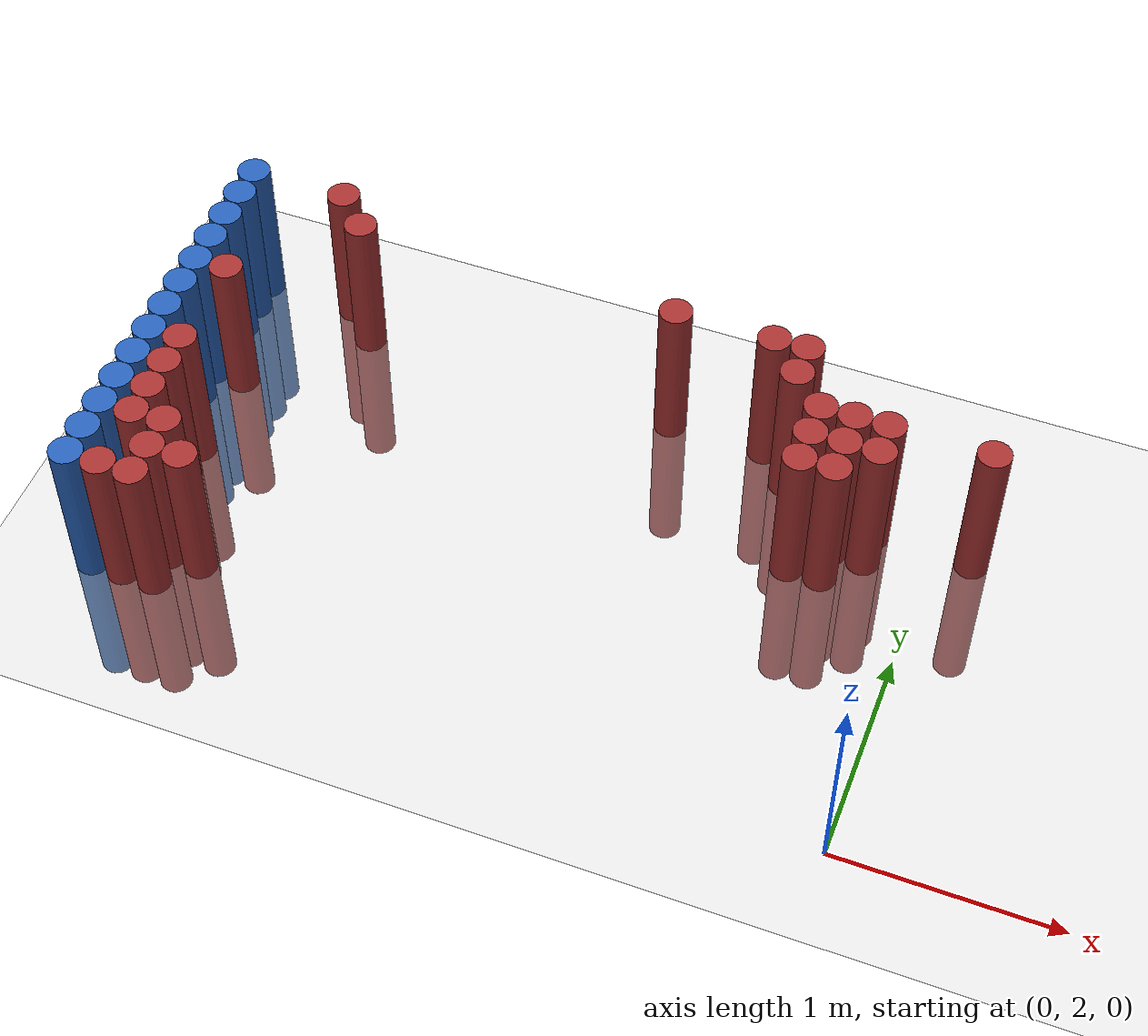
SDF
<sdf version="1.6">
 <world name="default">
  <model name="ground_plane">
   <static>1</static>
   <link name="link">
    <collision name="collision">
     <geometry><plane><normal>0 0 1</normal><size>100 100</size></plane></geometry>
     <surface><friction><ode><mu>100</mu><mu2>50</mu2></ode></friction></surface>
    </collision>
    <visual name="visual">
     <cast_shadows>0</cast_shadows>
     <geometry><plane><normal>0 0 1</normal><size>100 100</size></plane></geometry>
     <material>
      <script><uri>file://media/materials/scripts/gazebo.material</uri><name>Gazebo/Grey</name></script>
     </material>
    </visual>
   </link>
  </model>
  <model name="unit_cylinder_145">
   <static>1</static>
   <pose>-3.425000 2.275000 0.000000 0.000000 0.000000 0.000000</pose>
   <link name="link">
    <inertial>
     <mass>1</mass>
     <inertia><ixx>0.145833</ixx><ixy>0</ixy><ixz>0</ixz><iyy>0.145833</iyy><iyz>0</iyz><izz>0.125</izz></inertia>
    </inertial>
    <collision name="collision">
     <geometry><cylinder><radius>0.075000</radius><length>1.5</length></cylinder></geometry>
    </collision>
    <visual name="visual">
     <geometry><cylinder><radius>0.075000</radius><length>1.5</length></cylinder></geometry>
     <material>
      <ambient>0.152000 0.379000 0.720000 1</ambient>
      <diffuse>0.152000 0.379000 0.720000 1</diffuse>
     </material>
     <material>
      <script><name>Gazebo/Grey</name><uri>file://media/materials/scripts/gazebo.material</uri></script>
     </material>
    </visual>
   </link>
  </model>
  <model name="unit_cylinder_147">
   <static>1</static>
   <pose>-3.425000 2.425000 0.000000 0.000000 0.000000 0.000000</pose>
   <link name="link">
    <inertial>
     <mass>1</mass>
     <inertia><ixx>0.145833</ixx><ixy>0</ixy><ixz>0</ixz><iyy>0.145833</iyy><iyz>0</iyz><izz>0.125</izz></inertia>
    </inertial>
    <collision name="collision">
     <geometry><cylinder><radius>0.075000</radius><length>1.5</length></cylinder></geometry>
    </collision>
    <visual name="visual">
     <geometry><cylinder><radius>0.075000</radius><length>1.5</length></cylinder></geometry>
     <material>
      <ambient>0.152000 0.379000 0.720000 1</ambient>
      <diffuse>0.152000 0.379000 0.720000 1</diffuse>
     </material>
     <material>
      <script><name>Gazebo/Grey</name><uri>file://media/materials/scripts/gazebo.material</uri></script>
     </material>
    </visual>
   </link>
  </model>
  <model name="unit_cylinder_149">
   <static>1</static>
   <pose>-3.425000 2.575000 0.000000 0.000000 0.000000 0.000000</pose>
   <link name="link">
    <inertial>
     <mass>1</mass>
     <inertia><ixx>0.145833</ixx><ixy>0</ixy><ixz>0</ixz><iyy>0.145833</iyy><iyz>0</iyz><izz>0.125</izz></inertia>
    </inertial>
    <collision name="collision">
     <geometry><cylinder><radius>0.075000</radius><length>1.5</length></cylinder></geometry>
    </collision>
    <visual name="visual">
     <geometry><cylinder><radius>0.075000</radius><length>1.5</length></cylinder></geometry>
     <material>
      <ambient>0.152000 0.379000 0.720000 1</ambient>
      <diffuse>0.152000 0.379000 0.720000 1</diffuse>
     </material>
     <material>
      <script><name>Gazebo/Grey</name><uri>file://media/materials/scripts/gazebo.material</uri></script>
     </material>
    </visual>
   </link>
  </model>
  <model name="unit_cylinder_151">
   <static>1</static>
   <pose>-3.425000 2.725000 0.000000 0.000000 0.000000 0.000000</pose>
   <link name="link">
    <inertial>
     <mass>1</mass>
     <inertia><ixx>0.145833</ixx><ixy>0</ixy><ixz>0</ixz><iyy>0.145833</iyy><iyz>0</iyz><izz>0.125</izz></inertia>
    </inertial>
    <collision name="collision">
     <geometry><cylinder><radius>0.075000</radius><length>1.5</length></cylinder></geometry>
    </collision>
    <visual name="visual">
     <geometry><cylinder><radius>0.075000</radius><length>1.5</length></cylinder></geometry>
     <material>
      <ambient>0.152000 0.379000 0.720000 1</ambient>
      <diffuse>0.152000 0.379000 0.720000 1</diffuse>
     </material>
     <material>
      <script><name>Gazebo/Grey</name><uri>file://media/materials/scripts/gazebo.material</uri></script>
     </material>
    </visual>
   </link>
  </model>
  <model name="unit_cylinder_153">
   <static>1</static>
   <pose>-3.425000 2.875000 0.000000 0.000000 0.000000 0.000000</pose>
   <link name="link">
    <inertial>
     <mass>1</mass>
     <inertia><ixx>0.145833</ixx><ixy>0</ixy><ixz>0</ixz><iyy>0.145833</iyy><iyz>0</iyz><izz>0.125</izz></inertia>
    </inertial>
    <collision name="collision">
     <geometry><cylinder><radius>0.075000</radius><length>1.5</length></cylinder></geometry>
    </collision>
    <visual name="visual">
     <geometry><cylinder><radius>0.075000</radius><length>1.5</length></cylinder></geometry>
     <material>
      <ambient>0.152000 0.379000 0.720000 1</ambient>
      <diffuse>0.152000 0.379000 0.720000 1</diffuse>
     </material>
     <material>
      <script><name>Gazebo/Grey</name><uri>file://media/materials/scripts/gazebo.material</uri></script>
     </material>
    </visual>
   </link>
  </model>
  <model name="unit_cylinder_155">
   <static>1</static>
   <pose>-3.425000 3.025000 0.000000 0.000000 0.000000 0.000000</pose>
   <link name="link">
    <inertial>
     <mass>1</mass>
     <inertia><ixx>0.145833</ixx><ixy>0</ixy><ixz>0</ixz><iyy>0.145833</iyy><iyz>0</iyz><izz>0.125</izz></inertia>
    </inertial>
    <collision name="collision">
     <geometry><cylinder><radius>0.075000</radius><length>1.5</length></cylinder></geometry>
    </collision>
    <visual name="visual">
     <geometry><cylinder><radius>0.075000</radius><length>1.5</length></cylinder></geometry>
     <material>
      <ambient>0.152000 0.379000 0.720000 1</ambient>
      <diffuse>0.152000 0.379000 0.720000 1</diffuse>
     </material>
     <material>
      <script><name>Gazebo/Grey</name><uri>file://media/materials/scripts/gazebo.material</uri></script>
     </material>
    </visual>
   </link>
  </model>
  <model name="unit_cylinder_157">
   <static>1</static>
   <pose>-3.425000 3.175000 0.000000 0.000000 0.000000 0.000000</pose>
   <link name="link">
    <inertial>
     <mass>1</mass>
     <inertia><ixx>0.145833</ixx><ixy>0</ixy><ixz>0</ixz><iyy>0.145833</iyy><iyz>0</iyz><izz>0.125</izz></inertia>
    </inertial>
    <collision name="collision">
     <geometry><cylinder><radius>0.075000</radius><length>1.5</length></cylinder></geometry>
    </collision>
    <visual name="visual">
     <geometry><cylinder><radius>0.075000</radius><length>1.5</length></cylinder></geometry>
     <material>
      <ambient>0.152000 0.379000 0.720000 1</ambient>
      <diffuse>0.152000 0.379000 0.720000 1</diffuse>
     </material>
     <material>
      <script><name>Gazebo/Grey</name><uri>file://media/materials/scripts/gazebo.material</uri></script>
     </material>
    </visual>
   </link>
  </model>
  <model name="unit_cylinder_159">
   <static>1</static>
   <pose>-3.425000 3.325000 0.000000 0.000000 0.000000 0.000000</pose>
   <link name="link">
    <inertial>
     <mass>1</mass>
     <inertia><ixx>0.145833</ixx><ixy>0</ixy><ixz>0</ixz><iyy>0.145833</iyy><iyz>0</iyz><izz>0.125</izz></inertia>
    </inertial>
    <collision name="collision">
     <geometry><cylinder><radius>0.075000</radius><length>1.5</length></cylinder></geometry>
    </collision>
    <visual name="visual">
     <geometry><cylinder><radius>0.075000</radius><length>1.5</length></cylinder></geometry>
     <material>
      <ambient>0.152000 0.379000 0.720000 1</ambient>
      <diffuse>0.152000 0.379000 0.720000 1</diffuse>
     </material>
     <material>
      <script><name>Gazebo/Grey</name><uri>file://media/materials/scripts/gazebo.material</uri></script>
     </material>
    </visual>
   </link>
  </model>
  <model name="unit_cylinder_161">
   <static>1</static>
   <pose>-3.425000 3.475000 0.000000 0.000000 0.000000 0.000000</pose>
   <link name="link">
    <inertial>
     <mass>1</mass>
     <inertia><ixx>0.145833</ixx><ixy>0</ixy><ixz>0</ixz><iyy>0.145833</iyy><iyz>0</iyz><izz>0.125</izz></inertia>
    </inertial>
    <collision name="collision">
     <geometry><cylinder><radius>0.075000</radius><length>1.5</length></cylinder></geometry>
    </collision>
    <visual name="visual">
     <geometry><cylinder><radius>0.075000</radius><length>1.5</length></cylinder></geometry>
     <material>
      <ambient>0.152000 0.379000 0.720000 1</ambient>
      <diffuse>0.152000 0.379000 0.720000 1</diffuse>
     </material>
     <material>
      <script><name>Gazebo/Grey</name><uri>file://media/materials/scripts/gazebo.material</uri></script>
     </material>
    </visual>
   </link>
  </model>
  <model name="unit_cylinder_163">
   <static>1</static>
   <pose>-3.425000 3.625000 0.000000 0.000000 0.000000 0.000000</pose>
   <link name="link">
    <inertial>
     <mass>1</mass>
     <inertia><ixx>0.145833</ixx><ixy>0</ixy><ixz>0</ixz><iyy>0.145833</iyy><iyz>0</iyz><izz>0.125</izz></inertia>
    </inertial>
    <collision name="collision">
     <geometry><cylinder><radius>0.075000</radius><length>1.5</length></cylinder></geometry>
    </collision>
    <visual name="visual">
     <geometry><cylinder><radius>0.075000</radius><length>1.5</length></cylinder></geometry>
     <material>
      <ambient>0.152000 0.379000 0.720000 1</ambient>
      <diffuse>0.152000 0.379000 0.720000 1</diffuse>
     </material>
     <material>
      <script><name>Gazebo/Grey</name><uri>file://media/materials/scripts/gazebo.material</uri></script>
     </material>
    </visual>
   </link>
  </model>
  <model name="unit_cylinder_165">
   <static>1</static>
   <pose>-3.425000 3.775000 0.000000 0.000000 0.000000 0.000000</pose>
   <link name="link">
    <inertial>
     <mass>1</mass>
     <inertia><ixx>0.145833</ixx><ixy>0</ixy><ixz>0</ixz><iyy>0.145833</iyy><iyz>0</iyz><izz>0.125</izz></inertia>
    </inertial>
    <collision name="collision">
     <geometry><cylinder><radius>0.075000</radius><length>1.5</length></cylinder></geometry>
    </collision>
    <visual name="visual">
     <geometry><cylinder><radius>0.075000</radius><length>1.5</length></cylinder></geometry>
     <material>
      <ambient>0.152000 0.379000 0.720000 1</ambient>
      <diffuse>0.152000 0.379000 0.720000 1</diffuse>
     </material>
     <material>
      <script><name>Gazebo/Grey</name><uri>file://media/materials/scripts/gazebo.material</uri></script>
     </material>
    </visual>
   </link>
  </model>
  <model name="unit_cylinder_167">
   <static>1</static>
   <pose>-3.425000 3.925000 0.000000 0.000000 0.000000 0.000000</pose>
   <link name="link">
    <inertial>
     <mass>1</mass>
     <inertia><ixx>0.145833</ixx><ixy>0</ixy><ixz>0</ixz><iyy>0.145833</iyy><iyz>0</iyz><izz>0.125</izz></inertia>
    </inertial>
    <collision name="collision">
     <geometry><cylinder><radius>0.075000</radius><length>1.5</length></cylinder></geometry>
    </collision>
    <visual name="visual">
     <geometry><cylinder><radius>0.075000</radius><length>1.5</length></cylinder></geometry>
     <material>
      <ambient>0.152000 0.379000 0.720000 1</ambient>
      <diffuse>0.152000 0.379000 0.720000 1</diffuse>
     </material>
     <material>
      <script><name>Gazebo/Grey</name><uri>file://media/materials/scripts/gazebo.material</uri></script>
     </material>
    </visual>
   </link>
  </model>
  <model name="unit_cylinder_169">
   <static>1</static>
   <pose>-3.425000 4.075000 0.000000 0.000000 0.000000 0.000000</pose>
   <link name="link">
    <inertial>
     <mass>1</mass>
     <inertia><ixx>0.145833</ixx><ixy>0</ixy><ixz>0</ixz><iyy>0.145833</iyy><iyz>0</iyz><izz>0.125</izz></inertia>
    </inertial>
    <collision name="collision">
     <geometry><cylinder><radius>0.075000</radius><length>1.5</length></cylinder></geometry>
    </collision>
    <visual name="visual">
     <geometry><cylinder><radius>0.075000</radius><length>1.5</length></cylinder></geometry>
     <material>
      <ambient>0.152000 0.379000 0.720000 1</ambient>
      <diffuse>0.152000 0.379000 0.720000 1</diffuse>
     </material>
     <material>
      <script><name>Gazebo/Grey</name><uri>file://media/materials/scripts/gazebo.material</uri></script>
     </material>
    </visual>
   </link>
  </model>
  <model name="unit_cylinder_236">
   <static>1</static>
   <pose>-3.425000 2.275000 0.000000 0.000000 0.000000 0.000000</pose>
   <link name="link">
    <inertial>
     <mass>1</mass>
     <inertia><ixx>0.145833</ixx><ixy>0</ixy><ixz>0</ixz><iyy>0.145833</iyy><iyz>0</iyz><izz>0.125</izz></inertia>
    </inertial>
    <collision name="collision">
     <geometry><cylinder><radius>0.075000</radius><length>1.5</length></cylinder></geometry>
    </collision>
    <visual name="visual">
     <geometry><cylinder><radius>0.075000</radius><length>1.5</length></cylinder></geometry>
     <material>
      <ambient>0.152000 0.379000 0.720000 1</ambient>
      <diffuse>0.152000 0.379000 0.720000 1</diffuse>
     </material>
     <material>
      <script><name>Gazebo/Grey</name><uri>file://media/materials/scripts/gazebo.material</uri></script>
     </material>
    </visual>
   </link>
  </model>
  <model name="unit_cylinder_237">
   <static>1</static>
   <pose>-3.425000 2.425000 0.000000 0.000000 0.000000 0.000000</pose>
   <link name="link">
    <inertial>
     <mass>1</mass>
     <inertia><ixx>0.145833</ixx><ixy>0</ixy><ixz>0</ixz><iyy>0.145833</iyy><iyz>0</iyz><izz>0.125</izz></inertia>
    </inertial>
    <collision name="collision">
     <geometry><cylinder><radius>0.075000</radius><length>1.5</length></cylinder></geometry>
    </collision>
    <visual name="visual">
     <geometry><cylinder><radius>0.075000</radius><length>1.5</length></cylinder></geometry>
     <material>
      <ambient>0.152000 0.379000 0.720000 1</ambient>
      <diffuse>0.152000 0.379000 0.720000 1</diffuse>
     </material>
     <material>
      <script><name>Gazebo/Grey</name><uri>file://media/materials/scripts/gazebo.material</uri></script>
     </material>
    </visual>
   </link>
  </model>
  <model name="unit_cylinder_238">
   <static>1</static>
   <pose>-3.425000 2.575000 0.000000 0.000000 0.000000 0.000000</pose>
   <link name="link">
    <inertial>
     <mass>1</mass>
     <inertia><ixx>0.145833</ixx><ixy>0</ixy><ixz>0</ixz><iyy>0.145833</iyy><iyz>0</iyz><izz>0.125</izz></inertia>
    </inertial>
    <collision name="collision">
     <geometry><cylinder><radius>0.075000</radius><length>1.5</length></cylinder></geometry>
    </collision>
    <visual name="visual">
     <geometry><cylinder><radius>0.075000</radius><length>1.5</length></cylinder></geometry>
     <material>
      <ambient>0.152000 0.379000 0.720000 1</ambient>
      <diffuse>0.152000 0.379000 0.720000 1</diffuse>
     </material>
     <material>
      <script><name>Gazebo/Grey</name><uri>file://media/materials/scripts/gazebo.material</uri></script>
     </material>
    </visual>
   </link>
  </model>
  <model name="unit_cylinder_239">
   <static>1</static>
   <pose>-3.425000 2.725000 0.000000 0.000000 0.000000 0.000000</pose>
   <link name="link">
    <inertial>
     <mass>1</mass>
     <inertia><ixx>0.145833</ixx><ixy>0</ixy><ixz>0</ixz><iyy>0.145833</iyy><iyz>0</iyz><izz>0.125</izz></inertia>
    </inertial>
    <collision name="collision">
     <geometry><cylinder><radius>0.075000</radius><length>1.5</length></cylinder></geometry>
    </collision>
    <visual name="visual">
     <geometry><cylinder><radius>0.075000</radius><length>1.5</length></cylinder></geometry>
     <material>
      <ambient>0.152000 0.379000 0.720000 1</ambient>
      <diffuse>0.152000 0.379000 0.720000 1</diffuse>
     </material>
     <material>
      <script><name>Gazebo/Grey</name><uri>file://media/materials/scripts/gazebo.material</uri></script>
     </material>
    </visual>
   </link>
  </model>
  <model name="unit_cylinder_240">
   <static>1</static>
   <pose>-3.425000 2.875000 0.000000 0.000000 0.000000 0.000000</pose>
   <link name="link">
    <inertial>
     <mass>1</mass>
     <inertia><ixx>0.145833</ixx><ixy>0</ixy><ixz>0</ixz><iyy>0.145833</iyy><iyz>0</iyz><izz>0.125</izz></inertia>
    </inertial>
    <collision name="collision">
     <geometry><cylinder><radius>0.075000</radius><length>1.5</length></cylinder></geometry>
    </collision>
    <visual name="visual">
     <geometry><cylinder><radius>0.075000</radius><length>1.5</length></cylinder></geometry>
     <material>
      <ambient>0.152000 0.379000 0.720000 1</ambient>
      <diffuse>0.152000 0.379000 0.720000 1</diffuse>
     </material>
     <material>
      <script><name>Gazebo/Grey</name><uri>file://media/materials/scripts/gazebo.material</uri></script>
     </material>
    </visual>
   </link>
  </model>
  <model name="unit_cylinder_241">
   <static>1</static>
   <pose>-3.425000 3.025000 0.000000 0.000000 0.000000 0.000000</pose>
   <link name="link">
    <inertial>
     <mass>1</mass>
     <inertia><ixx>0.145833</ixx><ixy>0</ixy><ixz>0</ixz><iyy>0.145833</iyy><iyz>0</iyz><izz>0.125</izz></inertia>
    </inertial>
    <collision name="collision">
     <geometry><cylinder><radius>0.075000</radius><length>1.5</length></cylinder></geometry>
    </collision>
    <visual name="visual">
     <geometry><cylinder><radius>0.075000</radius><length>1.5</length></cylinder></geometry>
     <material>
      <ambient>0.152000 0.379000 0.720000 1</ambient>
      <diffuse>0.152000 0.379000 0.720000 1</diffuse>
     </material>
     <material>
      <script><name>Gazebo/Grey</name><uri>file://media/materials/scripts/gazebo.material</uri></script>
     </material>
    </visual>
   </link>
  </model>
  <model name="unit_cylinder_242">
   <static>1</static>
   <pose>-3.425000 3.175000 0.000000 0.000000 0.000000 0.000000</pose>
   <link name="link">
    <inertial>
     <mass>1</mass>
     <inertia><ixx>0.145833</ixx><ixy>0</ixy><ixz>0</ixz><iyy>0.145833</iyy><iyz>0</iyz><izz>0.125</izz></inertia>
    </inertial>
    <collision name="collision">
     <geometry><cylinder><radius>0.075000</radius><length>1.5</length></cylinder></geometry>
    </collision>
    <visual name="visual">
     <geometry><cylinder><radius>0.075000</radius><length>1.5</length></cylinder></geometry>
     <material>
      <ambient>0.152000 0.379000 0.720000 1</ambient>
      <diffuse>0.152000 0.379000 0.720000 1</diffuse>
     </material>
     <material>
      <script><name>Gazebo/Grey</name><uri>file://media/materials/scripts/gazebo.material</uri></script>
     </material>
    </visual>
   </link>
  </model>
  <model name="unit_cylinder_243">
   <static>1</static>
   <pose>-3.425000 3.325000 0.000000 0.000000 0.000000 0.000000</pose>
   <link name="link">
    <inertial>
     <mass>1</mass>
     <inertia><ixx>0.145833</ixx><ixy>0</ixy><ixz>0</ixz><iyy>0.145833</iyy><iyz>0</iyz><izz>0.125</izz></inertia>
    </inertial>
    <collision name="collision">
     <geometry><cylinder><radius>0.075000</radius><length>1.5</length></cylinder></geometry>
    </collision>
    <visual name="visual">
     <geometry><cylinder><radius>0.075000</radius><length>1.5</length></cylinder></geometry>
     <material>
      <ambient>0.152000 0.379000 0.720000 1</ambient>
      <diffuse>0.152000 0.379000 0.720000 1</diffuse>
     </material>
     <material>
      <script><name>Gazebo/Grey</name><uri>file://media/materials/scripts/gazebo.material</uri></script>
     </material>
    </visual>
   </link>
  </model>
  <model name="unit_cylinder_244">
   <static>1</static>
   <pose>-3.425000 3.475000 0.000000 0.000000 0.000000 0.000000</pose>
   <link name="link">
    <inertial>
     <mass>1</mass>
     <inertia><ixx>0.145833</ixx><ixy>0</ixy><ixz>0</ixz><iyy>0.145833</iyy><iyz>0</iyz><izz>0.125</izz></inertia>
    </inertial>
    <collision name="collision">
     <geometry><cylinder><radius>0.075000</radius><length>1.5</length></cylinder></geometry>
    </collision>
    <visual name="visual">
     <geometry><cylinder><radius>0.075000</radius><length>1.5</length></cylinder></geometry>
     <material>
      <ambient>0.152000 0.379000 0.720000 1</ambient>
      <diffuse>0.152000 0.379000 0.720000 1</diffuse>
     </material>
     <material>
      <script><name>Gazebo/Grey</name><uri>file://media/materials/scripts/gazebo.material</uri></script>
     </material>
    </visual>
   </link>
  </model>
  <model name="unit_cylinder_245">
   <static>1</static>
   <pose>-3.425000 3.625000 0.000000 0.000000 0.000000 0.000000</pose>
   <link name="link">
    <inertial>
     <mass>1</mass>
     <inertia><ixx>0.145833</ixx><ixy>0</ixy><ixz>0</ixz><iyy>0.145833</iyy><iyz>0</iyz><izz>0.125</izz></inertia>
    </inertial>
    <collision name="collision">
     <geometry><cylinder><radius>0.075000</radius><length>1.5</length></cylinder></geometry>
    </collision>
    <visual name="visual">
     <geometry><cylinder><radius>0.075000</radius><length>1.5</length></cylinder></geometry>
     <material>
      <ambient>0.152000 0.379000 0.720000 1</ambient>
      <diffuse>0.152000 0.379000 0.720000 1</diffuse>
     </material>
     <material>
      <script><name>Gazebo/Grey</name><uri>file://media/materials/scripts/gazebo.material</uri></script>
     </material>
    </visual>
   </link>
  </model>
  <model name="unit_cylinder_246">
   <static>1</static>
   <pose>-3.425000 3.775000 0.000000 0.000000 0.000000 0.000000</pose>
   <link name="link">
    <inertial>
     <mass>1</mass>
     <inertia><ixx>0.145833</ixx><ixy>0</ixy><ixz>0</ixz><iyy>0.145833</iyy><iyz>0</iyz><izz>0.125</izz></inertia>
    </inertial>
    <collision name="collision">
     <geometry><cylinder><radius>0.075000</radius><length>1.5</length></cylinder></geometry>
    </collision>
    <visual name="visual">
     <geometry><cylinder><radius>0.075000</radius><length>1.5</length></cylinder></geometry>
     <material>
      <ambient>0.152000 0.379000 0.720000 1</ambient>
      <diffuse>0.152000 0.379000 0.720000 1</diffuse>
     </material>
     <material>
      <script><name>Gazebo/Grey</name><uri>file://media/materials/scripts/gazebo.material</uri></script>
     </material>
    </visual>
   </link>
  </model>
  <model name="unit_cylinder_247">
   <static>1</static>
   <pose>-3.425000 3.925000 0.000000 0.000000 0.000000 0.000000</pose>
   <link name="link">
    <inertial>
     <mass>1</mass>
     <inertia><ixx>0.145833</ixx><ixy>0</ixy><ixz>0</ixz><iyy>0.145833</iyy><iyz>0</iyz><izz>0.125</izz></inertia>
    </inertial>
    <collision name="collision">
     <geometry><cylinder><radius>0.075000</radius><length>1.5</length></cylinder></geometry>
    </collision>
    <visual name="visual">
     <geometry><cylinder><radius>0.075000</radius><length>1.5</length></cylinder></geometry>
     <material>
      <ambient>0.152000 0.379000 0.720000 1</ambient>
      <diffuse>0.152000 0.379000 0.720000 1</diffuse>
     </material>
     <material>
      <script><name>Gazebo/Grey</name><uri>file://media/materials/scripts/gazebo.material</uri></script>
     </material>
    </visual>
   </link>
  </model>
  <model name="unit_cylinder_248">
   <static>1</static>
   <pose>-3.425000 4.075000 0.000000 0.000000 0.000000 0.000000</pose>
   <link name="link">
    <inertial>
     <mass>1</mass>
     <inertia><ixx>0.145833</ixx><ixy>0</ixy><ixz>0</ixz><iyy>0.145833</iyy><iyz>0</iyz><izz>0.125</izz></inertia>
    </inertial>
    <collision name="collision">
     <geometry><cylinder><radius>0.075000</radius><length>1.5</length></cylinder></geometry>
    </collision>
    <visual name="visual">
     <geometry><cylinder><radius>0.075000</radius><length>1.5</length></cylinder></geometry>
     <material>
      <ambient>0.152000 0.379000 0.720000 1</ambient>
      <diffuse>0.152000 0.379000 0.720000 1</diffuse>
     </material>
     <material>
      <script><name>Gazebo/Grey</name><uri>file://media/materials/scripts/gazebo.material</uri></script>
     </material>
    </visual>
   </link>
  </model>
  <model name="unit_cylinder_271">
   <static>1</static>
   <pose>-3.275000 2.275000 0.000000 0.000000 0.000000 0.000000</pose>
   <link name="link">
    <inertial>
     <mass>1</mass>
     <inertia><ixx>0.145833</ixx><ixy>0</ixy><ixz>0</ixz><iyy>0.145833</iyy><iyz>0</iyz><izz>0.125</izz></inertia>
    </inertial>
    <collision name="collision">
     <geometry><cylinder><radius>0.075000</radius><length>1.5</length></cylinder></geometry>
    </collision>
    <visual name="visual">
     <geometry><cylinder><radius>0.075000</radius><length>1.5</length></cylinder></geometry>
     <material>
      <ambient>0.648000 0.192000 0.192000 1</ambient>
      <diffuse>0.648000 0.192000 0.192000 1</diffuse>
     </material>
     <material>
      <script><name>Gazebo/Grey</name><uri>file://media/materials/scripts/gazebo.material</uri></script>
     </material>
    </visual>
   </link>
  </model>
  <model name="unit_cylinder_272">
   <static>1</static>
   <pose>-3.275000 2.575000 0.000000 0.000000 0.000000 0.000000</pose>
   <link name="link">
    <inertial>
     <mass>1</mass>
     <inertia><ixx>0.145833</ixx><ixy>0</ixy><ixz>0</ixz><iyy>0.145833</iyy><iyz>0</iyz><izz>0.125</izz></inertia>
    </inertial>
    <collision name="collision">
     <geometry><cylinder><radius>0.075000</radius><length>1.5</length></cylinder></geometry>
    </collision>
    <visual name="visual">
     <geometry><cylinder><radius>0.075000</radius><length>1.5</length></cylinder></geometry>
     <material>
      <ambient>0.648000 0.192000 0.192000 1</ambient>
      <diffuse>0.648000 0.192000 0.192000 1</diffuse>
     </material>
     <material>
      <script><name>Gazebo/Grey</name><uri>file://media/materials/scripts/gazebo.material</uri></script>
     </material>
    </visual>
   </link>
  </model>
  <model name="unit_cylinder_273">
   <static>1</static>
   <pose>-3.275000 2.725000 0.000000 0.000000 0.000000 0.000000</pose>
   <link name="link">
    <inertial>
     <mass>1</mass>
     <inertia><ixx>0.145833</ixx><ixy>0</ixy><ixz>0</ixz><iyy>0.145833</iyy><iyz>0</iyz><izz>0.125</izz></inertia>
    </inertial>
    <collision name="collision">
     <geometry><cylinder><radius>0.075000</radius><length>1.5</length></cylinder></geometry>
    </collision>
    <visual name="visual">
     <geometry><cylinder><radius>0.075000</radius><length>1.5</length></cylinder></geometry>
     <material>
      <ambient>0.648000 0.192000 0.192000 1</ambient>
      <diffuse>0.648000 0.192000 0.192000 1</diffuse>
     </material>
     <material>
      <script><name>Gazebo/Grey</name><uri>file://media/materials/scripts/gazebo.material</uri></script>
     </material>
    </visual>
   </link>
  </model>
  <model name="unit_cylinder_274">
   <static>1</static>
   <pose>-3.275000 2.875000 0.000000 0.000000 0.000000 0.000000</pose>
   <link name="link">
    <inertial>
     <mass>1</mass>
     <inertia><ixx>0.145833</ixx><ixy>0</ixy><ixz>0</ixz><iyy>0.145833</iyy><iyz>0</iyz><izz>0.125</izz></inertia>
    </inertial>
    <collision name="collision">
     <geometry><cylinder><radius>0.075000</radius><length>1.5</length></cylinder></geometry>
    </collision>
    <visual name="visual">
     <geometry><cylinder><radius>0.075000</radius><length>1.5</length></cylinder></geometry>
     <material>
      <ambient>0.648000 0.192000 0.192000 1</ambient>
      <diffuse>0.648000 0.192000 0.192000 1</diffuse>
     </material>
     <material>
      <script><name>Gazebo/Grey</name><uri>file://media/materials/scripts/gazebo.material</uri></script>
     </material>
    </visual>
   </link>
  </model>
  <model name="unit_cylinder_275">
   <static>1</static>
   <pose>-3.275000 3.025000 0.000000 0.000000 0.000000 0.000000</pose>
   <link name="link">
    <inertial>
     <mass>1</mass>
     <inertia><ixx>0.145833</ixx><ixy>0</ixy><ixz>0</ixz><iyy>0.145833</iyy><iyz>0</iyz><izz>0.125</izz></inertia>
    </inertial>
    <collision name="collision">
     <geometry><cylinder><radius>0.075000</radius><length>1.5</length></cylinder></geometry>
    </collision>
    <visual name="visual">
     <geometry><cylinder><radius>0.075000</radius><length>1.5</length></cylinder></geometry>
     <material>
      <ambient>0.648000 0.192000 0.192000 1</ambient>
      <diffuse>0.648000 0.192000 0.192000 1</diffuse>
     </material>
     <material>
      <script><name>Gazebo/Grey</name><uri>file://media/materials/scripts/gazebo.material</uri></script>
     </material>
    </visual>
   </link>
  </model>
  <model name="unit_cylinder_276">
   <static>1</static>
   <pose>-3.275000 3.475000 0.000000 0.000000 0.000000 0.000000</pose>
   <link name="link">
    <inertial>
     <mass>1</mass>
     <inertia><ixx>0.145833</ixx><ixy>0</ixy><ixz>0</ixz><iyy>0.145833</iyy><iyz>0</iyz><izz>0.125</izz></inertia>
    </inertial>
    <collision name="collision">
     <geometry><cylinder><radius>0.075000</radius><length>1.5</length></cylinder></geometry>
    </collision>
    <visual name="visual">
     <geometry><cylinder><radius>0.075000</radius><length>1.5</length></cylinder></geometry>
     <material>
      <ambient>0.648000 0.192000 0.192000 1</ambient>
      <diffuse>0.648000 0.192000 0.192000 1</diffuse>
     </material>
     <material>
      <script><name>Gazebo/Grey</name><uri>file://media/materials/scripts/gazebo.material</uri></script>
     </material>
    </visual>
   </link>
  </model>
  <model name="unit_cylinder_288">
   <static>1</static>
   <pose>-3.125000 2.275000 0.000000 0.000000 0.000000 0.000000</pose>
   <link name="link">
    <inertial>
     <mass>1</mass>
     <inertia><ixx>0.145833</ixx><ixy>0</ixy><ixz>0</ixz><iyy>0.145833</iyy><iyz>0</iyz><izz>0.125</izz></inertia>
    </inertial>
    <collision name="collision">
     <geometry><cylinder><radius>0.075000</radius><length>1.5</length></cylinder></geometry>
    </collision>
    <visual name="visual">
     <geometry><cylinder><radius>0.075000</radius><length>1.5</length></cylinder></geometry>
     <material>
      <ambient>0.648000 0.192000 0.192000 1</ambient>
      <diffuse>0.648000 0.192000 0.192000 1</diffuse>
     </material>
     <material>
      <script><name>Gazebo/Grey</name><uri>file://media/materials/scripts/gazebo.material</uri></script>
     </material>
    </visual>
   </link>
  </model>
  <model name="unit_cylinder_289">
   <static>1</static>
   <pose>-3.125000 2.425000 0.000000 0.000000 0.000000 0.000000</pose>
   <link name="link">
    <inertial>
     <mass>1</mass>
     <inertia><ixx>0.145833</ixx><ixy>0</ixy><ixz>0</ixz><iyy>0.145833</iyy><iyz>0</iyz><izz>0.125</izz></inertia>
    </inertial>
    <collision name="collision">
     <geometry><cylinder><radius>0.075000</radius><length>1.5</length></cylinder></geometry>
    </collision>
    <visual name="visual">
     <geometry><cylinder><radius>0.075000</radius><length>1.5</length></cylinder></geometry>
     <material>
      <ambient>0.648000 0.192000 0.192000 1</ambient>
      <diffuse>0.648000 0.192000 0.192000 1</diffuse>
     </material>
     <material>
      <script><name>Gazebo/Grey</name><uri>file://media/materials/scripts/gazebo.material</uri></script>
     </material>
    </visual>
   </link>
  </model>
  <model name="unit_cylinder_290">
   <static>1</static>
   <pose>-3.125000 2.575000 0.000000 0.000000 0.000000 0.000000</pose>
   <link name="link">
    <inertial>
     <mass>1</mass>
     <inertia><ixx>0.145833</ixx><ixy>0</ixy><ixz>0</ixz><iyy>0.145833</iyy><iyz>0</iyz><izz>0.125</izz></inertia>
    </inertial>
    <collision name="collision">
     <geometry><cylinder><radius>0.075000</radius><length>1.5</length></cylinder></geometry>
    </collision>
    <visual name="visual">
     <geometry><cylinder><radius>0.075000</radius><length>1.5</length></cylinder></geometry>
     <material>
      <ambient>0.648000 0.192000 0.192000 1</ambient>
      <diffuse>0.648000 0.192000 0.192000 1</diffuse>
     </material>
     <material>
      <script><name>Gazebo/Grey</name><uri>file://media/materials/scripts/gazebo.material</uri></script>
     </material>
    </visual>
   </link>
  </model>
  <model name="unit_cylinder_294">
   <static>1</static>
   <pose>-2.975000 2.425000 0.000000 0.000000 0.000000 0.000000</pose>
   <link name="link">
    <inertial>
     <mass>1</mass>
     <inertia><ixx>0.145833</ixx><ixy>0</ixy><ixz>0</ixz><iyy>0.145833</iyy><iyz>0</iyz><izz>0.125</izz></inertia>
    </inertial>
    <collision name="collision">
     <geometry><cylinder><radius>0.075000</radius><length>1.5</length></cylinder></geometry>
    </collision>
    <visual name="visual">
     <geometry><cylinder><radius>0.075000</radius><length>1.5</length></cylinder></geometry>
     <material>
      <ambient>0.648000 0.192000 0.192000 1</ambient>
      <diffuse>0.648000 0.192000 0.192000 1</diffuse>
     </material>
     <material>
      <script><name>Gazebo/Grey</name><uri>file://media/materials/scripts/gazebo.material</uri></script>
     </material>
    </visual>
   </link>
  </model>
  <model name="unit_cylinder_295">
   <static>1</static>
   <pose>-2.975000 4.075000 0.000000 0.000000 0.000000 0.000000</pose>
   <link name="link">
    <inertial>
     <mass>1</mass>
     <inertia><ixx>0.145833</ixx><ixy>0</ixy><ixz>0</ixz><iyy>0.145833</iyy><iyz>0</iyz><izz>0.125</izz></inertia>
    </inertial>
    <collision name="collision">
     <geometry><cylinder><radius>0.075000</radius><length>1.5</length></cylinder></geometry>
    </collision>
    <visual name="visual">
     <geometry><cylinder><radius>0.075000</radius><length>1.5</length></cylinder></geometry>
     <material>
      <ambient>0.648000 0.192000 0.192000 1</ambient>
      <diffuse>0.648000 0.192000 0.192000 1</diffuse>
     </material>
     <material>
      <script><name>Gazebo/Grey</name><uri>file://media/materials/scripts/gazebo.material</uri></script>
     </material>
    </visual>
   </link>
  </model>
  <model name="unit_cylinder_296">
   <static>1</static>
   <pose>-2.825000 3.925000 0.000000 0.000000 0.000000 0.000000</pose>
   <link name="link">
    <inertial>
     <mass>1</mass>
     <inertia><ixx>0.145833</ixx><ixy>0</ixy><ixz>0</ixz><iyy>0.145833</iyy><iyz>0</iyz><izz>0.125</izz></inertia>
    </inertial>
    <collision name="collision">
     <geometry><cylinder><radius>0.075000</radius><length>1.5</length></cylinder></geometry>
    </collision>
    <visual name="visual">
     <geometry><cylinder><radius>0.075000</radius><length>1.5</length></cylinder></geometry>
     <material>
      <ambient>0.648000 0.192000 0.192000 1</ambient>
      <diffuse>0.648000 0.192000 0.192000 1</diffuse>
     </material>
     <material>
      <script><name>Gazebo/Grey</name><uri>file://media/materials/scripts/gazebo.material</uri></script>
     </material>
    </visual>
   </link>
  </model>
  <model name="unit_cylinder_346">
   <static>1</static>
   <pose>-1.325000 3.925000 0.000000 0.000000 0.000000 0.000000</pose>
   <link name="link">
    <inertial>
     <mass>1</mass>
     <inertia><ixx>0.145833</ixx><ixy>0</ixy><ixz>0</ixz><iyy>0.145833</iyy><iyz>0</iyz><izz>0.125</izz></inertia>
    </inertial>
    <collision name="collision">
     <geometry><cylinder><radius>0.075000</radius><length>1.5</length></cylinder></geometry>
    </collision>
    <visual name="visual">
     <geometry><cylinder><radius>0.075000</radius><length>1.5</length></cylinder></geometry>
     <material>
      <ambient>0.648000 0.192000 0.192000 1</ambient>
      <diffuse>0.648000 0.192000 0.192000 1</diffuse>
     </material>
     <material>
      <script><name>Gazebo/Grey</name><uri>file://media/materials/scripts/gazebo.material</uri></script>
     </material>
    </visual>
   </link>
  </model>
  <model name="unit_cylinder_355">
   <static>1</static>
   <pose>-0.875000 3.925000 0.000000 0.000000 0.000000 0.000000</pose>
   <link name="link">
    <inertial>
     <mass>1</mass>
     <inertia><ixx>0.145833</ixx><ixy>0</ixy><ixz>0</ixz><iyy>0.145833</iyy><iyz>0</iyz><izz>0.125</izz></inertia>
    </inertial>
    <collision name="collision">
     <geometry><cylinder><radius>0.075000</radius><length>1.5</length></cylinder></geometry>
    </collision>
    <visual name="visual">
     <geometry><cylinder><radius>0.075000</radius><length>1.5</length></cylinder></geometry>
     <material>
      <ambient>0.648000 0.192000 0.192000 1</ambient>
      <diffuse>0.648000 0.192000 0.192000 1</diffuse>
     </material>
     <material>
      <script><name>Gazebo/Grey</name><uri>file://media/materials/scripts/gazebo.material</uri></script>
     </material>
    </visual>
   </link>
  </model>
  <model name="unit_cylinder_356">
   <static>1</static>
   <pose>-0.725000 3.775000 0.000000 0.000000 0.000000 0.000000</pose>
   <link name="link">
    <inertial>
     <mass>1</mass>
     <inertia><ixx>0.145833</ixx><ixy>0</ixy><ixz>0</ixz><iyy>0.145833</iyy><iyz>0</iyz><izz>0.125</izz></inertia>
    </inertial>
    <collision name="collision">
     <geometry><cylinder><radius>0.075000</radius><length>1.5</length></cylinder></geometry>
    </collision>
    <visual name="visual">
     <geometry><cylinder><radius>0.075000</radius><length>1.5</length></cylinder></geometry>
     <material>
      <ambient>0.648000 0.192000 0.192000 1</ambient>
      <diffuse>0.648000 0.192000 0.192000 1</diffuse>
     </material>
     <material>
      <script><name>Gazebo/Grey</name><uri>file://media/materials/scripts/gazebo.material</uri></script>
     </material>
    </visual>
   </link>
  </model>
  <model name="unit_cylinder_357">
   <static>1</static>
   <pose>-0.725000 3.925000 0.000000 0.000000 0.000000 0.000000</pose>
   <link name="link">
    <inertial>
     <mass>1</mass>
     <inertia><ixx>0.145833</ixx><ixy>0</ixy><ixz>0</ixz><iyy>0.145833</iyy><iyz>0</iyz><izz>0.125</izz></inertia>
    </inertial>
    <collision name="collision">
     <geometry><cylinder><radius>0.075000</radius><length>1.5</length></cylinder></geometry>
    </collision>
    <visual name="visual">
     <geometry><cylinder><radius>0.075000</radius><length>1.5</length></cylinder></geometry>
     <material>
      <ambient>0.648000 0.192000 0.192000 1</ambient>
      <diffuse>0.648000 0.192000 0.192000 1</diffuse>
     </material>
     <material>
      <script><name>Gazebo/Grey</name><uri>file://media/materials/scripts/gazebo.material</uri></script>
     </material>
    </visual>
   </link>
  </model>
  <model name="unit_cylinder_364">
   <static>1</static>
   <pose>-0.575000 3.325000 0.000000 0.000000 0.000000 0.000000</pose>
   <link name="link">
    <inertial>
     <mass>1</mass>
     <inertia><ixx>0.145833</ixx><ixy>0</ixy><ixz>0</ixz><iyy>0.145833</iyy><iyz>0</iyz><izz>0.125</izz></inertia>
    </inertial>
    <collision name="collision">
     <geometry><cylinder><radius>0.075000</radius><length>1.5</length></cylinder></geometry>
    </collision>
    <visual name="visual">
     <geometry><cylinder><radius>0.075000</radius><length>1.5</length></cylinder></geometry>
     <material>
      <ambient>0.648000 0.192000 0.192000 1</ambient>
      <diffuse>0.648000 0.192000 0.192000 1</diffuse>
     </material>
     <material>
      <script><name>Gazebo/Grey</name><uri>file://media/materials/scripts/gazebo.material</uri></script>
     </material>
    </visual>
   </link>
  </model>
  <model name="unit_cylinder_365">
   <static>1</static>
   <pose>-0.575000 3.475000 0.000000 0.000000 0.000000 0.000000</pose>
   <link name="link">
    <inertial>
     <mass>1</mass>
     <inertia><ixx>0.145833</ixx><ixy>0</ixy><ixz>0</ixz><iyy>0.145833</iyy><iyz>0</iyz><izz>0.125</izz></inertia>
    </inertial>
    <collision name="collision">
     <geometry><cylinder><radius>0.075000</radius><length>1.5</length></cylinder></geometry>
    </collision>
    <visual name="visual">
     <geometry><cylinder><radius>0.075000</radius><length>1.5</length></cylinder></geometry>
     <material>
      <ambient>0.648000 0.192000 0.192000 1</ambient>
      <diffuse>0.648000 0.192000 0.192000 1</diffuse>
     </material>
     <material>
      <script><name>Gazebo/Grey</name><uri>file://media/materials/scripts/gazebo.material</uri></script>
     </material>
    </visual>
   </link>
  </model>
  <model name="unit_cylinder_366">
   <static>1</static>
   <pose>-0.575000 3.625000 0.000000 0.000000 0.000000 0.000000</pose>
   <link name="link">
    <inertial>
     <mass>1</mass>
     <inertia><ixx>0.145833</ixx><ixy>0</ixy><ixz>0</ixz><iyy>0.145833</iyy><iyz>0</iyz><izz>0.125</izz></inertia>
    </inertial>
    <collision name="collision">
     <geometry><cylinder><radius>0.075000</radius><length>1.5</length></cylinder></geometry>
    </collision>
    <visual name="visual">
     <geometry><cylinder><radius>0.075000</radius><length>1.5</length></cylinder></geometry>
     <material>
      <ambient>0.648000 0.192000 0.192000 1</ambient>
      <diffuse>0.648000 0.192000 0.192000 1</diffuse>
     </material>
     <material>
      <script><name>Gazebo/Grey</name><uri>file://media/materials/scripts/gazebo.material</uri></script>
     </material>
    </visual>
   </link>
  </model>
  <model name="unit_cylinder_373">
   <static>1</static>
   <pose>-0.425000 3.325000 0.000000 0.000000 0.000000 0.000000</pose>
   <link name="link">
    <inertial>
     <mass>1</mass>
     <inertia><ixx>0.145833</ixx><ixy>0</ixy><ixz>0</ixz><iyy>0.145833</iyy><iyz>0</iyz><izz>0.125</izz></inertia>
    </inertial>
    <collision name="collision">
     <geometry><cylinder><radius>0.075000</radius><length>1.5</length></cylinder></geometry>
    </collision>
    <visual name="visual">
     <geometry><cylinder><radius>0.075000</radius><length>1.5</length></cylinder></geometry>
     <material>
      <ambient>0.648000 0.192000 0.192000 1</ambient>
      <diffuse>0.648000 0.192000 0.192000 1</diffuse>
     </material>
     <material>
      <script><name>Gazebo/Grey</name><uri>file://media/materials/scripts/gazebo.material</uri></script>
     </material>
    </visual>
   </link>
  </model>
  <model name="unit_cylinder_374">
   <static>1</static>
   <pose>-0.425000 3.475000 0.000000 0.000000 0.000000 0.000000</pose>
   <link name="link">
    <inertial>
     <mass>1</mass>
     <inertia><ixx>0.145833</ixx><ixy>0</ixy><ixz>0</ixz><iyy>0.145833</iyy><iyz>0</iyz><izz>0.125</izz></inertia>
    </inertial>
    <collision name="collision">
     <geometry><cylinder><radius>0.075000</radius><length>1.5</length></cylinder></geometry>
    </collision>
    <visual name="visual">
     <geometry><cylinder><radius>0.075000</radius><length>1.5</length></cylinder></geometry>
     <material>
      <ambient>0.648000 0.192000 0.192000 1</ambient>
      <diffuse>0.648000 0.192000 0.192000 1</diffuse>
     </material>
     <material>
      <script><name>Gazebo/Grey</name><uri>file://media/materials/scripts/gazebo.material</uri></script>
     </material>
    </visual>
   </link>
  </model>
  <model name="unit_cylinder_375">
   <static>1</static>
   <pose>-0.425000 3.625000 0.000000 0.000000 0.000000 0.000000</pose>
   <link name="link">
    <inertial>
     <mass>1</mass>
     <inertia><ixx>0.145833</ixx><ixy>0</ixy><ixz>0</ixz><iyy>0.145833</iyy><iyz>0</iyz><izz>0.125</izz></inertia>
    </inertial>
    <collision name="collision">
     <geometry><cylinder><radius>0.075000</radius><length>1.5</length></cylinder></geometry>
    </collision>
    <visual name="visual">
     <geometry><cylinder><radius>0.075000</radius><length>1.5</length></cylinder></geometry>
     <material>
      <ambient>0.648000 0.192000 0.192000 1</ambient>
      <diffuse>0.648000 0.192000 0.192000 1</diffuse>
     </material>
     <material>
      <script><name>Gazebo/Grey</name><uri>file://media/materials/scripts/gazebo.material</uri></script>
     </material>
    </visual>
   </link>
  </model>
  <model name="unit_cylinder_378">
   <static>1</static>
   <pose>-0.275000 3.475000 0.000000 0.000000 0.000000 0.000000</pose>
   <link name="link">
    <inertial>
     <mass>1</mass>
     <inertia><ixx>0.145833</ixx><ixy>0</ixy><ixz>0</ixz><iyy>0.145833</iyy><iyz>0</iyz><izz>0.125</izz></inertia>
    </inertial>
    <collision name="collision">
     <geometry><cylinder><radius>0.075000</radius><length>1.5</length></cylinder></geometry>
    </collision>
    <visual name="visual">
     <geometry><cylinder><radius>0.075000</radius><length>1.5</length></cylinder></geometry>
     <material>
      <ambient>0.648000 0.192000 0.192000 1</ambient>
      <diffuse>0.648000 0.192000 0.192000 1</diffuse>
     </material>
     <material>
      <script><name>Gazebo/Grey</name><uri>file://media/materials/scripts/gazebo.material</uri></script>
     </material>
    </visual>
   </link>
  </model>
  <model name="unit_cylinder_379">
   <static>1</static>
   <pose>-0.275000 3.625000 0.000000 0.000000 0.000000 0.000000</pose>
   <link name="link">
    <inertial>
     <mass>1</mass>
     <inertia><ixx>0.145833</ixx><ixy>0</ixy><ixz>0</ixz><iyy>0.145833</iyy><iyz>0</iyz><izz>0.125</izz></inertia>
    </inertial>
    <collision name="collision">
     <geometry><cylinder><radius>0.075000</radius><length>1.5</length></cylinder></geometry>
    </collision>
    <visual name="visual">
     <geometry><cylinder><radius>0.075000</radius><length>1.5</length></cylinder></geometry>
     <material>
      <ambient>0.648000 0.192000 0.192000 1</ambient>
      <diffuse>0.648000 0.192000 0.192000 1</diffuse>
     </material>
     <material>
      <script><name>Gazebo/Grey</name><uri>file://media/materials/scripts/gazebo.material</uri></script>
     </material>
    </visual>
   </link>
  </model>
  <model name="unit_cylinder_387">
   <static>1</static>
   <pose>0.175000 3.625000 0.000000 0.000000 0.000000 0.000000</pose>
   <link name="link">
    <inertial>
     <mass>1</mass>
     <inertia><ixx>0.145833</ixx><ixy>0</ixy><ixz>0</ixz><iyy>0.145833</iyy><iyz>0</iyz><izz>0.125</izz></inertia>
    </inertial>
    <collision name="collision">
     <geometry><cylinder><radius>0.075000</radius><length>1.5</length></cylinder></geometry>
    </collision>
    <visual name="visual">
     <geometry><cylinder><radius>0.075000</radius><length>1.5</length></cylinder></geometry>
     <material>
      <ambient>0.648000 0.192000 0.192000 1</ambient>
      <diffuse>0.648000 0.192000 0.192000 1</diffuse>
     </material>
     <material>
      <script><name>Gazebo/Grey</name><uri>file://media/materials/scripts/gazebo.material</uri></script>
     </material>
    </visual>
   </link>
  </model>
 </world>
</sdf>
